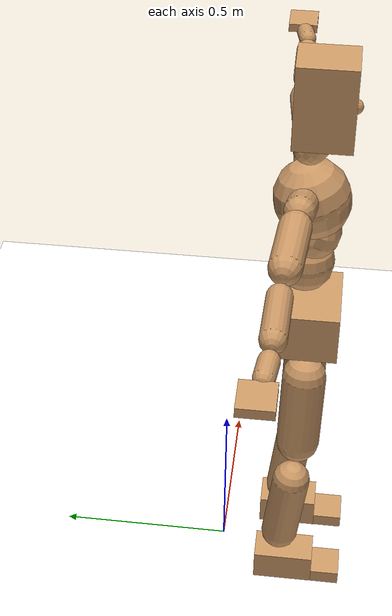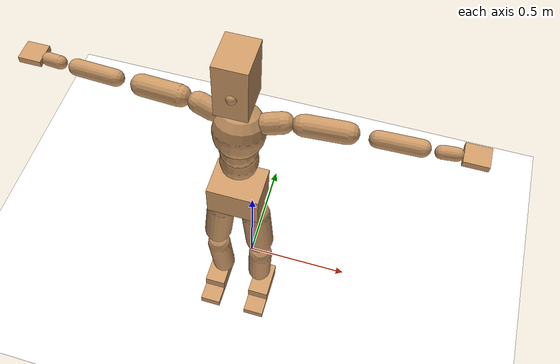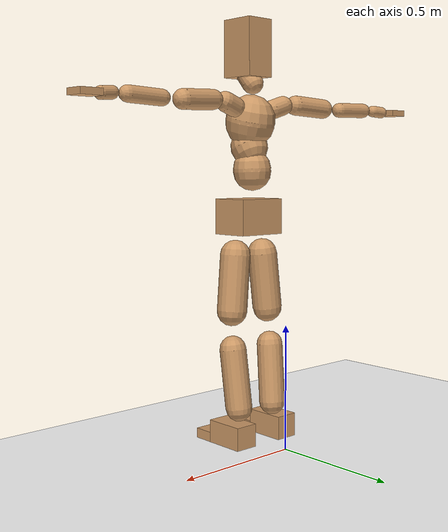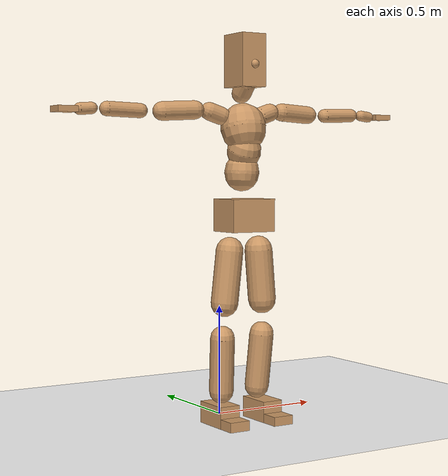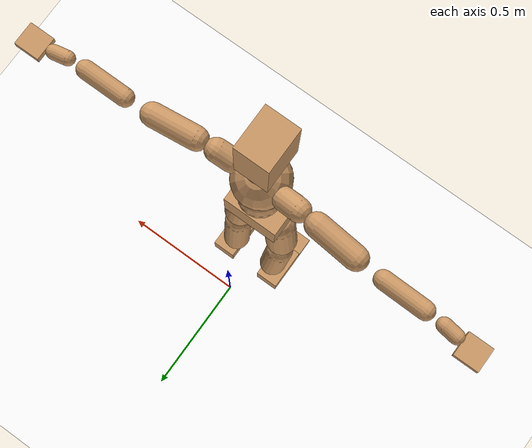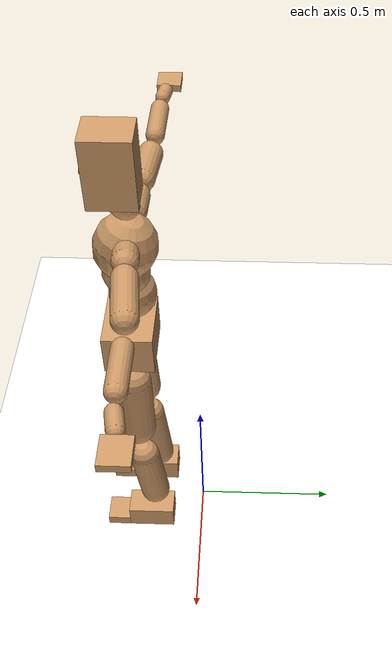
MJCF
<mujoco model="humanoid">
  <option integrator="implicitfast" />

  <visual>
    <global offwidth="1280" offheight="960" />
    <headlight active="1" ambient="0.34 0.34 0.34" diffuse="0.5 0.5 0.5" />
  </visual>

  <default>
    <joint damping="2" stiffness="2" armature="0.01" limited="true" solimplimit="0 .99 .01" />
    <geom condim="1" friction="0.7 0.005 0.0001" solimp=".99 .99 .003" solref="0.015 1" margin="0.001" rgba="0.8 0.6 .4 1" />
    <default class="smplcontact">
      <geom condim="3" friction="1. 0.005 0.0001" solref="0.015 1" solimp="0.98 0.98 0.001" priority="1" />
    </default>
    <default class="stiff_medium">
      <joint stiffness="10" />
    </default>
    <default class="stiff_medium_higher">
      <joint stiffness="50" />
    </default>
    <default class="stiff_high">
      <joint stiffness="100" />
    </default>
  </default>

  <asset>
    <texture type="skybox" builtin="gradient" rgb1="0.99 0.99 0.99" rgb2="0.608 0.828 0.892" width="100" />
    <texture builtin="flat" height="1278" mark="cross" markrgb="1 1 1" name="texgeom" random="0.01" rgb1="0.8 0.6 0.4" rgb2="0.8 0.6 0.4" type="cube" width="127" />
    <texture name="texplane" type="2d" builtin="checker" markrgb="1 1 1" rgb1="0.756 0.772 0.76" rgb2="0.6 0.6 0.6" width="100" height="100" />
    <material name="MatPlane" reflectance="0.5" texture="texplane" texrepeat="1 1" texuniform="true" />
    <material name="geom" texture="texgeom" texuniform="true" />
  </asset>

  <worldbody>
    <light name="tracking_light" pos="0 0 7" dir="0 0 -1" directional="true" cutoff="100" exponent="1" diffuse="1 1 1" specular="0.1 0.1 0.1" mode="trackcom" />
    <camera name="back" pos="0 3 2.4" xyaxes="-1 0 0 0 -1 2" mode="trackcom" />
    <camera name="side" pos="-3 0 2.4" xyaxes="0 -1 0 1 0 2" mode="trackcom" />
    <camera name="front_side" pos="-2.8 -2.8 0.8" xyaxes="0.5 -0.5 0 0.1 0.1 1" mode="trackcom" />
    <geom condim="3" name="floor" pos="0 0 0" rgba="1 1 1 1" size="100 100 .2" type="plane" material="MatPlane" />
    <body name="Pelvis" pos="-0.0018 -0.2233 0.9367" euler="90 0 0">
      <site name="Pelvis" size="0.01" />
      <freejoint name="Pelvis" />
      <geom type="box" pos="-0.0000 -0.0121 -0.0055" size="0.1069 0.0722 0.083" quat="1.0000 0.0000 0.0000 0.0000" density="3165.830099" name="Pelvis" />
      <body name="L_Hip" pos="0.0695 -0.0914 -0.0068">
        <joint name="L_Hip_x" type="hinge" pos="0 0 0" axis="1 0 0" stiffness="10.0" range="-160.0 22.92" class="stiff_medium" damping="15.0" armature="0.01"/>
        <joint name="L_Hip_y" type="hinge" pos="0 0 0" axis="0 1 0" stiffness="10.0" range="-70.0 70.0" class="stiff_medium" damping="10.000000000000007" armature="0.010000000000000014"/>
        <joint name="L_Hip_z" type="hinge" pos="0 0 0" axis="0 0 1" stiffness="10.0" range="-28.65 90.0" class="stiff_medium" damping="9.999999999999998" armature="0.009999999999999995"/>
        <geom type="capsule" density="2040.816327" fromto="0.0069 -0.075 -0.0009 0.0274 -0.3002 -0.0036" size="0.0615" name="L_Hip" />
        <body name="L_Knee" pos="0.0343 -0.3752 -0.0045">
          <joint name="L_Knee_x" type="hinge" pos="0 0 0" axis="1 0 0" range="-5.16 171.89" damping="8.000000000000005" armature="0.010000000000000014" stiffness="2.0"/>
          <joint name="L_Knee_y" type="hinge" pos="0 0 0" axis="0 1 0" range="-4.58 6.88" damping="8.000000000000004" armature="0.010000000000000009" stiffness="2.0"/>
          <joint name="L_Knee_z" type="hinge" pos="0 0 0" axis="0 0 1" range="-6.88 4.58" damping="7.999999999999997" armature="0.009999999999999993" stiffness="2.0"/>
          <geom type="capsule" density="1234.567901" fromto="-0.0027 -0.0796 -0.0087 -0.0109 -0.3184 -0.035" size="0.0541" name="L_Knee" />
          <body name="L_Ankle" pos="-0.0136 -0.398 -0.0437">
            <joint name="L_Ankle_x" type="hinge" pos="0 0 0" axis="1 0 0" range="-45.84 45.84" class="stiff_medium" damping="6.000000000000013" armature="0.010000000000000045" stiffness="10.0"/>
            <joint name="L_Ankle_y" type="hinge" pos="0 0 0" axis="0 1 0" range="-74.48 22.92" class="stiff_medium" damping="3.0" armature="0.010000000000000002" stiffness="10.0"/>
            <joint name="L_Ankle_z" type="hinge" pos="0 0 0" axis="0 0 1" range="-4.58 4.58" class="stiff_medium" damping="5.999999999999894" armature="0.009999999999999646" stiffness="10.0"/>
            <geom type="box" pos="0.0233 -0.0239 0.0242" size="0.0483 0.0464 0.085" quat="1.0000 0.0000 0.0000 0.0000" density="449.071558" name="L_Ankle" class="smplcontact" />
            <body name="L_Toe" pos="0.0264 -0.0558 0.1193">
              <joint name="L_Toe_x" type="hinge" pos="0 0 0" axis="1 0 0" range="-91.67 22.92" armature="0.00999999999999973" damping="1.999999999999973" stiffness="2.0"/>
              <joint name="L_Toe_y" type="hinge" pos="0 0 0" axis="0 1 0" range="-4.58 4.58" armature="0.01" damping="2.0" stiffness="2.0"/>
              <joint name="L_Toe_z" type="hinge" pos="0 0 0" axis="0 0 1" range="-4.58 4.58" armature="0.009999999999999176" damping="1.9999999999999176" stiffness="2.0"/>
              <geom type="box" pos="-0.003 0.0055 0.0248" size="0.0478 0.02 0.0496" quat="1.0000 0.0000 0.0000 0.0000" density="423.206892" name="L_Toe" class="smplcontact" />
            </body>
          </body>
        </body>
      </body>
      <body name="R_Hip" pos="-0.0677 -0.0905 -0.0043">
        <joint name="R_Hip_x" type="hinge" pos="0 0 0" axis="1 0 0" stiffness="10.0" range="-160.0 22.92" class="stiff_medium" damping="15.0" armature="0.01"/>
        <joint name="R_Hip_y" type="hinge" pos="0 0 0" axis="0 1 0" stiffness="10.0" range="-70.0 70.0" class="stiff_medium" damping="10.000000000000007" armature="0.010000000000000014"/>
        <joint name="R_Hip_z" type="hinge" pos="0 0 0" axis="0 0 1" stiffness="10.0" range="-90.0 28.65" class="stiff_medium" damping="9.999999999999998" armature="0.009999999999999995"/>
        <geom type="capsule" density="2040.816327" fromto="-0.0077 -0.0765 -0.0018 -0.0306 -0.3061 -0.0071" size="0.0606" name="R_Hip" />
        <body name="R_Knee" pos="-0.0383 -0.3826 -0.0089">
          <joint name="R_Knee_x" type="hinge" pos="0 0 0" axis="1 0 0" range="-5.16 171.89" damping="8.000000000000005" armature="0.010000000000000014" stiffness="2.0"/>
          <joint name="R_Knee_y" type="hinge" pos="0 0 0" axis="0 1 0" range="-6.88 4.58" damping="8.000000000000004" armature="0.010000000000000009" stiffness="2.0"/>
          <joint name="R_Knee_z" type="hinge" pos="0 0 0" axis="0 0 1" range="-4.58 6.88" damping="7.999999999999997" armature="0.009999999999999993" stiffness="2.0"/>
          <geom type="capsule" density="1234.567901" fromto="0.0032 -0.0797 -0.0085 0.0126 -0.3187 -0.0338" size="0.0541" name="R_Knee" />
          <body name="R_Ankle" pos="0.0158 -0.3984 -0.0423">
            <joint name="R_Ankle_x" type="hinge" pos="0 0 0" axis="1 0 0" range="-45.84 45.84" class="stiff_medium" damping="6.000000000000013" armature="0.010000000000000045" stiffness="10.0"/>
            <joint name="R_Ankle_y" type="hinge" pos="0 0 0" axis="0 1 0" range="-22.92 74.48" class="stiff_medium" damping="3.0" armature="0.010000000000000002" stiffness="10.0"/>
            <joint name="R_Ankle_z" type="hinge" pos="0 0 0" axis="0 0 1" range="-4.58 4.58" class="stiff_medium" damping="5.999999999999894" armature="0.009999999999999646" stiffness="10.0"/>
            <geom type="box" pos="-0.0212 -0.0174 0.0256" size="0.0483 0.0478 0.0865" quat="1.0000 0.0000 0.0000 0.0000" density="434.700981" name="R_Ankle" class="smplcontact" />
            <body name="R_Toe" pos="-0.0254 -0.0481 0.1233">
              <joint name="R_Toe_x" type="hinge" pos="0 0 0" axis="1 0 0" range="-91.67 22.92" armature="0.00999999999999973" damping="1.999999999999973" stiffness="2.0"/>
              <joint name="R_Toe_y" type="hinge" pos="0 0 0" axis="0 1 0" range="-4.58 4.58" armature="0.01" damping="2.0" stiffness="2.0"/>
              <joint name="R_Toe_z" type="hinge" pos="0 0 0" axis="0 0 1" range="-4.58 4.58" armature="0.009999999999999176" damping="1.9999999999999176" stiffness="2.0"/>
              <geom type="box" pos="0.0042 0.0045 0.0227" size="0.0479 0.0216 0.0493" quat="1.0000 0.0000 0.0000 0.0000" density="407.384095" name="R_Toe" class="smplcontact" />
            </body>
          </body>
        </body>
      </body>
      <body name="Torso" pos="-0.0025 0.109 -0.0267">
        <joint name="Torso_x" type="hinge" pos="0 0 0" axis="1 0 0" range="-25.78 57.3" class="stiff_medium" damping="12.837672596239175" armature="0.008627765864413606" stiffness="8.489687843137256"/>
        <joint name="Torso_y" type="hinge" pos="0 0 0" axis="0 1 0" range="-57.3 57.3" class="stiff_high" damping="13.920145493830063" armature="0.0056304006567302846" stiffness="86.03759411764705"/>
        <joint name="Torso_z" type="hinge" pos="0 0 0" axis="0 0 1" range="-34.38 34.38" class="stiff_high" damping="16.313482756433828" armature="0.00759355084219654" stiffness="87.61702040816327"/>
        <geom type="capsule" density="2040.816327" fromto="0.0025 0.0608 0.0005 0.003 0.0743 0.0006" size="0.0769" name="Torso" />
        <body name="Spine" pos="0.0055 0.1352 0.0011">
          <joint name="Spine_x" type="hinge" pos="0 0 0" axis="1 0 0" stiffness="8.440003921568628" range="-25.78 57.3" class="stiff_medium" damping="12.944044339710404" armature="0.008822970301140124"/>
          <joint name="Spine_y" type="hinge" pos="0 0 0" axis="0 1 0" stiffness="8.622363333333332" range="-57.3 57.3" class="stiff_high" damping="5.558891092892723" armature="0.005599768044303965"/>
          <joint name="Spine_z" type="hinge" pos="0 0 0" axis="0 0 1" stiffness="16.81056166666667" range="-34.38 34.38" class="stiff_high" damping="9.22406294447444" armature="0.007029586757117282"/>
          <geom type="capsule" density="2040.816327" fromto="0.0007 0.0238 0.0114 0.0008 0.0291 0.014" size="0.0755" name="Spine" />
          <body name="Chest" pos="0.0015 0.0529 0.0254">
            <joint name="Chest_x" type="hinge" pos="0 0 0" axis="1 0 0" stiffness="8.46999632653061" range="-25.78 57.3" class="stiff_medium" damping="13.04188811790167" armature="0.00892514335295326"/>
            <joint name="Chest_y" type="hinge" pos="0 0 0" axis="0 1 0" stiffness="7.662303513513513" range="-57.3 57.3" class="stiff_high" damping="5.229467469280725" armature="0.0055766784843231665"/>
            <joint name="Chest_z" type="hinge" pos="0 0 0" axis="0 0 1" stiffness="17.370472765957448" range="-34.38 34.38" class="stiff_high" damping="9.195844926855209" armature="0.006761439133758051"/>
            <geom type="capsule" density="2040.816327" fromto="-0.0009 0.0682 -0.0173 -0.001 0.0833 -0.0212" size="0.1002" name="Chest" />
            <body name="Neck" pos="-0.0028 0.2139 -0.0429">
              <joint name="Neck_x" type="hinge" pos="0 0 0" axis="1 0 0" range="-28.65 57.3" class="stiff_medium_higher" damping="10.000000000000007" armature="0.010000000000000016" stiffness="50.0"/>
              <joint name="Neck_y" type="hinge" pos="0 0 0" axis="0 1 0" range="-40.11 40.11" class="stiff_medium_higher" damping="10.0" armature="0.01" stiffness="50.0"/>
              <joint name="Neck_z" type="hinge" pos="0 0 0" axis="0 0 1" range="-40.11 40.11" class="stiff_medium_higher" damping="10.0" armature="0.010000000000000002" stiffness="50.0"/>
              <geom type="capsule" density="1000" fromto="0.001 0.013 0.0103 0.0041 0.052 0.0411" size="0.0436" name="Neck" />
              <body name="Head" pos="0.0052 0.065 0.0513">
                <joint name="Head_x" type="hinge" pos="0 0 0" axis="1 0 0" range="-28.65 57.3" class="stiff_medium_higher" damping="1.9999999999999967" armature="0.009999999999999967" stiffness="50.0"/>
                <joint name="Head_y" type="hinge" pos="0 0 0" axis="0 1 0" range="-40.11 40.11" class="stiff_medium_higher" damping="2.0" armature="0.01" stiffness="50.0"/>
                <joint name="Head_z" type="hinge" pos="0 0 0" axis="0 0 1" range="-40.11 40.11" class="stiff_medium_higher" damping="1.9999999999999947" armature="0.009999999999999946" stiffness="50.0"/>
                <geom type="box" pos="-0.0042 0.0876 -0.0116" size="0.0606 0.1154 0.076" quat="1.0000 0.0000 0.0000 0.0000" density="1018.069894" name="Head" />
                <geom type="capsule" name="nose" size="0.02 0.01" pos="0 0.07 0.05" quat="1 0 0 0" mass="0" contype="0" conaffinity="0" />
              </body>
            </body>
            <body name="L_Thorax" pos="0.0788 0.1217 -0.0341">
              <joint name="L_Thorax_x" type="hinge" pos="0 0 0" axis="1 0 0" range="-10.89 4.58" class="stiff_medium_higher" damping="9.898453848284408" armature="0.0044690876275493415" stiffness="27.40475147058824"/>
              <joint name="L_Thorax_y" type="hinge" pos="0 0 0" axis="0 1 0" range="-28.65 17.19" class="stiff_medium_higher" damping="10.906436762891813" armature="0.005394379524433924" stiffness="27.563495098039215"/>
              <joint name="L_Thorax_z" type="hinge" pos="0 0 0" axis="0 0 1" range="-31.51 40.11" class="stiff_medium_higher" damping="10.907008396061892" armature="0.005395227001882433" stiffness="27.562054411764702"/>
              <geom type="capsule" density="1000" fromto="0.0182 0.0061 -0.0018 0.0728 0.0244 -0.0071" size="0.0403775" name="L_Thorax" />
              <body name="L_Shoulder" pos="0.091 0.0305 -0.0089">
                <joint name="L_Shoulder_x" type="hinge" pos="0 0 0" axis="1 0 0" range="-97.4 97.4" class="stiff_medium" damping="2.8335812834294707" armature="0.004087809572777424" stiffness="5.456048137254902"/>
                <joint name="L_Shoulder_y" type="hinge" pos="0 0 0" axis="0 1 0" range="-108.86 80.21" class="stiff_medium" damping="3.2560358396207056" armature="0.005353512398076549" stiffness="5.500941666666668"/>
                <joint name="L_Shoulder_z" type="hinge" pos="0 0 0" axis="0 0 1" range="-97.4 85.94" class="stiff_medium" damping="3.255329917746848" armature="0.005354534137045781" stiffness="5.497507450980392"/>
                <geom type="capsule" density="1000" fromto="0.0519 -0.0026 -0.0055 0.2077 -0.0102 -0.022" size="0.0400675" name="L_Shoulder" />
                <body name="L_Elbow" pos="0.2596 -0.0128 -0.0275">
                  <joint name="L_Elbow_x" type="hinge" pos="0 0 0" axis="1 0 0" range="-17.19 4.58" damping="2.1692232321573766" armature="0.003512713386026221" stiffness="1.0716569019607842"/>
                  <joint name="L_Elbow_y" type="hinge" pos="0 0 0" axis="0 1 0" range="-180.0 17.19" damping="2.6281197645592975" armature="0.0051559193496456945" stiffness="1.0717023333333335"/>
                  <joint name="L_Elbow_z" type="hinge" pos="0 0 0" axis="0 0 1" range="-100.84 4.58" damping="2.628479458959908" armature="0.005161267946560704" stiffness="1.0708848039215686"/>
                  <geom type="capsule" density="1000" fromto="0.0498 0.0018 -0.0002 0.1994 0.0072 -0.0009" size="0.0313875" name="L_Elbow" />
                  <body name="L_Wrist" pos="0.2492 0.009 -0.0012">
                    <joint name="L_Wrist_x" type="hinge" pos="0 0 0" axis="1 0 0" range="-180.0 22.92" armature="0.003413260414707593" damping="0.8179602317085058" stiffness="0.9800877450980392"/>
                    <joint name="L_Wrist_y" type="hinge" pos="0 0 0" axis="0 1 0" range="-17.19 17.19" armature="0.004554216652521888" damping="0.9480666530130746" stiffness="0.9868111764705882"/>
                    <joint name="L_Wrist_z" type="hinge" pos="0 0 0" axis="0 0 1" range="-22.92 22.92" armature="0.004616250356941995" damping="0.9533907320657456" stiffness="0.9845153725490194"/>
                    <geom type="capsule" density="1000" fromto="0.0168 -0.0016 -0.003 0.0672 -0.0065 -0.012" size="0.024645" name="L_Wrist" class="smplcontact" />
                    <body name="L_Hand" pos="0.084 -0.0082 -0.0149">
                      <joint name="L_Hand_x" type="hinge" pos="0 0 0" axis="1 0 0" range="-17.19 17.19" armature="0.0028768062493040357" damping="0.731876295599479" stiffness="0.930968"/>
                      <joint name="L_Hand_y" type="hinge" pos="0 0 0" axis="0 1 0" range="-51.57 51.57" armature="0.003775286570750197" damping="0.8384117112968031" stiffness="0.930968"/>
                      <joint name="L_Hand_z" type="hinge" pos="0 0 0" axis="0 0 1" range="-91.67 91.67" armature="0.004014788776441228" damping="0.864597001802104" stiffness="0.930968"/>
                      <geom type="box" pos="0.0493 0.001 -0.0058" size="0.0453375 0.012245 0.041695" quat="1.0000 0.0000 0.0000 0.0000" density="400.552564" name="L_Hand" class="smplcontact" />
                    </body>
                  </body>
                </body>
              </body>
            </body>
            <body name="R_Thorax" pos="-0.0818 0.1188 -0.0386">
              <joint name="R_Thorax_x" type="hinge" pos="0 0 0" axis="1 0 0" range="-10.89 4.58" class="stiff_medium_higher" damping="9.898453848284408" armature="0.0044690876275493415" stiffness="27.40475147058824"/>
              <joint name="R_Thorax_y" type="hinge" pos="0 0 0" axis="0 1 0" range="-17.19 28.65" class="stiff_medium_higher" damping="10.906436762891813" armature="0.005394379524433924" stiffness="27.563495098039215"/>
              <joint name="R_Thorax_z" type="hinge" pos="0 0 0" axis="0 0 1" range="-40.11 31.51" class="stiff_medium_higher" damping="10.907008396061892" armature="0.005395227001882433" stiffness="27.562054411764702"/>
              <geom type="capsule" density="1000" fromto="-0.0192 0.0065 -0.0018 -0.0768 0.026 -0.0073" size="0.0396025" name="R_Thorax" />
              <body name="R_Shoulder" pos="-0.096 0.0326 -0.0091">
                <joint name="R_Shoulder_x" type="hinge" pos="0 0 0" axis="1 0 0" range="-97.4 97.4" class="stiff_medium" damping="2.8335812834294707" armature="0.004087809572777424" stiffness="5.456048137254902"/>
                <joint name="R_Shoulder_y" type="hinge" pos="0 0 0" axis="0 1 0" range="-80.21 108.86" class="stiff_medium" damping="3.2560358396207056" armature="0.005353512398076549" stiffness="5.500941666666668"/>
                <joint name="R_Shoulder_z" type="hinge" pos="0 0 0" axis="0 0 1" range="-85.94 97.4" class="stiff_medium" damping="3.255329917746848" armature="0.005354534137045781" stiffness="5.497507450980392"/>
                <geom type="capsule" density="1000" fromto="-0.0507 -0.0027 -0.0043 -0.203 -0.0107 -0.0171" size="0.0411525" name="R_Shoulder" />
                <body name="R_Elbow" pos="-0.2537 -0.0133 -0.0214">
                  <joint name="R_Elbow_x" type="hinge" pos="0 0 0" axis="1 0 0" range="-17.19 4.58" damping="2.1692232321573766" armature="0.003512713386026221" stiffness="1.0716569019607842"/>
                  <joint name="R_Elbow_y" type="hinge" pos="0 0 0" axis="0 1 0" range="-17.19 180.0" damping="2.6281197645592975" armature="0.0051559193496456945" stiffness="1.0717023333333335"/>
                  <joint name="R_Elbow_z" type="hinge" pos="0 0 0" axis="0 0 1" range="-4.58 100.84" damping="2.628479458959908" armature="0.005161267946560704" stiffness="1.0708848039215686"/>
                  <geom type="capsule" density="1000" fromto="-0.0511 0.0016 -0.0011 -0.2042 0.0062 -0.0044" size="0.03162" name="R_Elbow" />
                  <body name="R_Wrist" pos="-0.2553 0.0078 -0.0056">
                    <joint name="R_Wrist_x" type="hinge" pos="0 0 0" axis="1 0 0" range="-180.0 22.92" armature="0.003413260414707593" damping="0.8179602317085058" stiffness="0.9800877450980392"/>
                    <joint name="R_Wrist_y" type="hinge" pos="0 0 0" axis="0 1 0" range="-17.19 17.19" armature="0.004554216652521888" damping="0.9480666530130746" stiffness="0.9868111764705882"/>
                    <joint name="R_Wrist_z" type="hinge" pos="0 0 0" axis="0 0 1" range="-22.92 22.92" armature="0.004616250356941995" damping="0.9533907320657456" stiffness="0.9845153725490194"/>
                    <geom type="capsule" density="1000" fromto="-0.0169 -0.0012 -0.0021 -0.0677 -0.0049 -0.0083" size="0.025265" name="R_Wrist" class="smplcontact" />
                    <body name="R_Hand" pos="-0.0846 -0.0061 -0.0103">
                      <joint name="R_Hand_x" type="hinge" pos="0 0 0" axis="1 0 0" range="-17.19 17.19" armature="0.0028768062493040357" damping="0.731876295599479" stiffness="0.930968"/>
                      <joint name="R_Hand_y" type="hinge" pos="0 0 0" axis="0 1 0" range="-51.57 51.57" armature="0.003775286570750197" damping="0.8384117112968031" stiffness="0.930968"/>
                      <joint name="R_Hand_z" type="hinge" pos="0 0 0" axis="0 0 1" range="-91.67 91.67" armature="0.004014788776441228" damping="0.864597001802104" stiffness="0.930968"/>
                      <geom type="box" pos="-0.0462 -0.0009 -0.0079" size="0.0440975 0.01271 0.042315" quat="1.0000 0.0000 0.0000 0.0000" density="403.679611" name="R_Hand" class="smplcontact" />
                    </body>
                  </body>
                </body>
              </body>
            </body>
          </body>
        </body>
      </body>
    </body>
  </worldbody>
  <actuator>
    <general name="L_Hip_x" joint="L_Hip_x" biastype="affine" gainprm="287.33006409732246" biasprm="-215.3247604770444 -180.0 -2.0" ctrllimited="true" ctrlrange="-1 1" forcerange="-360.0 360.0" />
    <general name="L_Hip_y" joint="L_Hip_y" biastype="affine" gainprm="219.9114857512855" biasprm="0.0 -180.0 -2.0000000000000013" ctrllimited="true" ctrlrange="-1 1" forcerange="-360.0 360.0" />
    <general name="L_Hip_z" joint="L_Hip_z" biastype="affine" gainprm="186.3749841742145" biasprm="96.3683546488669 -180.0 -1.9999999999999996" ctrllimited="true" ctrlrange="-1 1" forcerange="-360.0 360.0" />
    <general name="L_Knee_x" joint="L_Knee_x" biastype="affine" gainprm="278.10948965903646" biasprm="261.8988715665131 -180.0 -2.0000000000000013" ctrllimited="true" ctrlrange="-1 1" forcerange="-360.0 360.0" />
    <general name="L_Knee_y" joint="L_Knee_y" biastype="affine" gainprm="18.001325905069514" biasprm="3.612831551628262 -180.0 -2.000000000000001" ctrllimited="true" ctrlrange="-1 1" forcerange="-360.0 360.0" />
    <general name="L_Knee_z" joint="L_Knee_z" biastype="affine" gainprm="18.001325905069514" biasprm="-3.612831551628262 -180.0 -1.9999999999999993" ctrllimited="true" ctrlrange="-1 1" forcerange="-360.0 360.0" />
    <general name="L_Ankle_x" joint="L_Ankle_x" biastype="affine" gainprm="72.00530362027807" biasprm="0.0 -90.0 -2.0000000000000044" ctrllimited="true" ctrlrange="-1 1" forcerange="-180.0 180.0" />
    <general name="L_Ankle_y" joint="L_Ankle_y" biastype="affine" gainprm="76.49778111491148" biasprm="-40.49512930477244 -90.0 -2.0" ctrllimited="true" ctrlrange="-1 1" forcerange="-180.0 180.0" />
    <general name="L_Ankle_z" joint="L_Ankle_z" biastype="affine" gainprm="7.1942471767206255" biasprm="0.0 -90.0 -1.9999999999999647" ctrllimited="true" ctrlrange="-1 1" forcerange="-180.0 180.0" />
    <general name="L_Toe_x" joint="L_Toe_x" biastype="affine" gainprm="71.99902043497087" biasprm="-43.19689898685965 -72.0 -0.7999999999999892" ctrllimited="true" ctrlrange="-1 1" forcerange="-144.0 144.0" />
    <general name="L_Toe_y" joint="L_Toe_y" biastype="affine" gainprm="5.755397741376501" biasprm="0.0 -72.0 -0.8" ctrllimited="true" ctrlrange="-1 1" forcerange="-144.0 144.0" />
    <general name="L_Toe_z" joint="L_Toe_z" biastype="affine" gainprm="5.755397741376501" biasprm="0.0 -72.0 -0.7999999999999671" ctrllimited="true" ctrlrange="-1 1" forcerange="-144.0 144.0" />
    <general name="R_Hip_x" joint="R_Hip_x" biastype="affine" gainprm="287.33006409732246" biasprm="-215.3247604770444 -180.0 -2.0" ctrllimited="true" ctrlrange="-1 1" forcerange="-360.0 360.0" />
    <general name="R_Hip_y" joint="R_Hip_y" biastype="affine" gainprm="219.9114857512855" biasprm="0.0 -180.0 -2.0000000000000013" ctrllimited="true" ctrlrange="-1 1" forcerange="-360.0 360.0" />
    <general name="R_Hip_z" joint="R_Hip_z" biastype="affine" gainprm="186.3749841742145" biasprm="-96.3683546488669 -180.0 -1.9999999999999996" ctrllimited="true" ctrlrange="-1 1" forcerange="-360.0 360.0" />
    <general name="R_Knee_x" joint="R_Knee_x" biastype="affine" gainprm="278.10948965903646" biasprm="261.8988715665131 -180.0 -2.0000000000000013" ctrllimited="true" ctrlrange="-1 1" forcerange="-360.0 360.0" />
    <general name="R_Knee_y" joint="R_Knee_y" biastype="affine" gainprm="18.001325905069514" biasprm="-3.612831551628262 -180.0 -2.000000000000001" ctrllimited="true" ctrlrange="-1 1" forcerange="-360.0 360.0" />
    <general name="R_Knee_z" joint="R_Knee_z" biastype="affine" gainprm="18.001325905069514" biasprm="3.612831551628262 -180.0 -1.9999999999999993" ctrllimited="true" ctrlrange="-1 1" forcerange="-360.0 360.0" />
    <general name="R_Ankle_x" joint="R_Ankle_x" biastype="affine" gainprm="72.00530362027807" biasprm="0.0 -90.0 -2.0000000000000044" ctrllimited="true" ctrlrange="-1 1" forcerange="-180.0 180.0" />
    <general name="R_Ankle_y" joint="R_Ankle_y" biastype="affine" gainprm="76.49778111491148" biasprm="40.49512930477244 -90.0 -2.0" ctrllimited="true" ctrlrange="-1 1" forcerange="-180.0 180.0" />
    <general name="R_Ankle_z" joint="R_Ankle_z" biastype="affine" gainprm="7.1942471767206255" biasprm="0.0 -90.0 -1.9999999999999647" ctrllimited="true" ctrlrange="-1 1" forcerange="-180.0 180.0" />
    <general name="R_Toe_x" joint="R_Toe_x" biastype="affine" gainprm="71.99902043497087" biasprm="-43.19689898685965 -72.0 -0.7999999999999892" ctrllimited="true" ctrlrange="-1 1" forcerange="-144.0 144.0" />
    <general name="R_Toe_y" joint="R_Toe_y" biastype="affine" gainprm="5.755397741376501" biasprm="0.0 -72.0 -0.8" ctrllimited="true" ctrlrange="-1 1" forcerange="-144.0 144.0" />
    <general name="R_Toe_z" joint="R_Toe_z" biastype="affine" gainprm="5.755397741376501" biasprm="0.0 -72.0 -0.7999999999999671" ctrllimited="true" ctrlrange="-1 1" forcerange="-144.0 144.0" />
    <general name="Torso_x" joint="Torso_x" biastype="affine" gainprm="147.72255939308" biasprm="56.04495753574723 -203.75250823529413 -3.423379358997113" ctrllimited="true" ctrlrange="-1 1" forcerange="-305.6287623529412 305.6287623529412" />
    <general name="Torso_y" joint="Torso_y" biastype="affine" gainprm="206.5054362399808" biasprm="0.0 -206.4902258823529 -2.7840290987660126" ctrllimited="true" ctrlrange="-1 1" forcerange="-309.73533882352933 309.73533882352933" />
    <general name="Torso_z" joint="Torso_z" biastype="affine" gainprm="126.17780313587792" biasprm="0.0 -210.28084897959184 -3.2626965512867656" ctrllimited="true" ctrlrange="-1 1" forcerange="-315.42127346938776 315.42127346938776" />
    <general name="Spine_x" joint="Spine_x" biastype="affine" gainprm="146.8580475063755" biasprm="55.716967469920014 -202.56009411764708 -3.4517451572561075" ctrllimited="true" ctrlrange="-1 1" forcerange="-303.84014117647064 303.84014117647064" />
    <general name="Spine_y" joint="Spine_y" biastype="affine" gainprm="206.95196324700646" biasprm="0.0 -206.93671999999998 -2.7794455464463614" ctrllimited="true" ctrlrange="-1 1" forcerange="-310.40508 310.40508" />
    <general name="Spine_z" joint="Spine_z" biastype="affine" gainprm="121.04495968357412" biasprm="0.0 -201.72674 -3.0746876481581467" ctrllimited="true" ctrlrange="-1 1" forcerange="-302.59011000000004 302.59011000000004" />
    <general name="Chest_x" joint="Chest_x" biastype="affine" gainprm="147.37992238625336" biasprm="55.914963331905454 -203.27991183673467 -3.4778368314404453" ctrllimited="true" ctrlrange="-1 1" forcerange="-304.919867755102 304.919867755102" />
    <general name="Chest_y" joint="Chest_y" biastype="affine" gainprm="183.90883030708795" biasprm="0.0 -183.8952843243243 -2.6147337346403625" ctrllimited="true" ctrlrange="-1 1" forcerange="-275.8429264864865 275.8429264864865" />
    <general name="Chest_z" joint="Chest_z" biastype="affine" gainprm="125.07661655405374" biasprm="0.0 -208.44567319148936 -3.0652816422850693" ctrllimited="true" ctrlrange="-1 1" forcerange="-312.66850978723403 312.66850978723403" />
    <general name="Neck_x" joint="Neck_x" biastype="affine" gainprm="27.00198885760427" biasprm="9.000662952534757 -36.0 -0.8000000000000006" ctrllimited="true" ctrlrange="-1 1" forcerange="-72.0 72.0" />
    <general name="Neck_y" joint="Neck_y" biastype="affine" gainprm="25.20185626709732" biasprm="0.0 -36.0 -0.8" ctrllimited="true" ctrlrange="-1 1" forcerange="-72.0 72.0" />
    <general name="Neck_z" joint="Neck_z" biastype="affine" gainprm="25.20185626709732" biasprm="0.0 -36.0 -0.8" ctrllimited="true" ctrlrange="-1 1" forcerange="-72.0 72.0" />
    <general name="Head_x" joint="Head_x" biastype="affine" gainprm="18.001325905069514" biasprm="6.000441968356505 -24.0 -0.7999999999999987" ctrllimited="true" ctrlrange="-1 1" forcerange="-48.0 48.0" />
    <general name="Head_y" joint="Head_y" biastype="affine" gainprm="16.801237511398213" biasprm="0.0 -24.0 -0.8" ctrllimited="true" ctrlrange="-1 1" forcerange="-48.0 48.0" />
    <general name="Head_z" joint="Head_z" biastype="affine" gainprm="16.801237511398213" biasprm="0.0 -24.0 -0.7999999999999979" ctrllimited="true" ctrlrange="-1 1" forcerange="-48.0 48.0" />
    <general name="L_Thorax_x" joint="L_Thorax_x" biastype="affine" gainprm="8.87921956247823" biasprm="-3.6217114052513035 -65.77140352941177 -0.7918763078627528" ctrllimited="true" ctrlrange="-1 1" forcerange="-131.54280705882354 131.54280705882354" />
    <general name="L_Thorax_y" joint="L_Thorax_y" biastype="affine" gainprm="26.462904444938125" biasprm="-6.615726111234531 -66.15238823529411 -0.8725149410313451" ctrllimited="true" ctrlrange="-1 1" forcerange="-132.30477647058822 132.30477647058822" />
    <general name="L_Thorax_z" joint="L_Thorax_z" biastype="affine" gainprm="41.34324071503103" biasprm="4.964421532382949 -66.14893058823529 -0.8725606716849514" ctrllimited="true" ctrlrange="-1 1" forcerange="-132.29786117647058 132.29786117647058" />
    <general name="L_Shoulder_x" joint="L_Shoulder_x" biastype="affine" gainprm="44.52006145665557" biasprm="0.0 -26.18903105882353 -0.7556216755811923" ctrllimited="true" ctrlrange="-1 1" forcerange="-52.37806211764706 52.37806211764706" />
    <general name="L_Shoulder_y" joint="L_Shoulder_y" biastype="affine" gainprm="43.566058781520816" biasprm="-6.60161624842953 -26.404520000000005 -0.8682762238988548" ctrllimited="true" ctrlrange="-1 1" forcerange="-52.80904000000001 52.80904000000001" />
    <general name="L_Shoulder_z" joint="L_Shoulder_z" biastype="affine" gainprm="42.219361689603346" biasprm="-2.6389979544172326 -26.388035764705883 -0.8680879780658262" ctrllimited="true" ctrlrange="-1 1" forcerange="-52.776071529411766 52.776071529411766" />
    <general name="L_Elbow_x" joint="L_Elbow_x" biastype="affine" gainprm="7.329326473452871" biasprm="-4.245420616915054 -38.57964847058823 -0.34707571714518026" ctrllimited="true" ctrlrange="-1 1" forcerange="-77.15929694117646 77.15929694117646" />
    <general name="L_Elbow_y" joint="L_Elbow_y" biastype="affine" gainprm="66.39095808289775" biasprm="-54.81572029756369 -38.58128400000001 -0.4204991623294876" ctrllimited="true" ctrlrange="-1 1" forcerange="-77.16256800000002 77.16256800000002" />
    <general name="L_Elbow_z" joint="L_Elbow_z" biastype="affine" gainprm="35.46628016580925" biasprm="-32.38459617492695 -38.55185294117647 -0.4205567134335853" ctrllimited="true" ctrlrange="-1 1" forcerange="-77.10370588235294 77.10370588235294" />
    <general name="L_Wrist_x" joint="L_Wrist_x" biastype="affine" gainprm="10.41330130729179" biasprm="-8.060917451948525 -5.880526470588235 -0.32718409268340237" ctrllimited="true" ctrlrange="-1 1" forcerange="-11.76105294117647 11.76105294117647" />
    <general name="L_Wrist_y" joint="L_Wrist_y" biastype="affine" gainprm="1.7763909594412128" biasprm="0.0 -5.9208670588235295 -0.37922666120522985" ctrllimited="true" ctrlrange="-1 1" forcerange="-11.841734117647059 11.841734117647059" />
    <general name="L_Wrist_z" joint="L_Wrist_z" biastype="affine" gainprm="2.363010943974111" biasprm="0.0 -5.907092235294117 -0.3813562928262983" ctrllimited="true" ctrlrange="-1 1" forcerange="-11.814184470588234 11.814184470588234" />
    <general name="L_Hand_x" joint="L_Hand_x" biastype="affine" gainprm="1.675865837519076" biasprm="0.0 -5.585808 -0.2927505182397916" ctrllimited="true" ctrlrange="-1 1" forcerange="-11.171616 11.171616" />
    <general name="L_Hand_y" joint="L_Hand_y" biastype="affine" gainprm="5.027597512557227" biasprm="0.0 -5.585808 -0.33536468451872126" ctrllimited="true" ctrlrange="-1 1" forcerange="-11.171616 11.171616" />
    <general name="L_Hand_z" joint="L_Hand_z" biastype="affine" gainprm="8.936976226025227" biasprm="0.0 -5.585808 -0.3458388007208416" ctrllimited="true" ctrlrange="-1 1" forcerange="-11.171616 11.171616" />
    <general name="R_Thorax_x" joint="R_Thorax_x" biastype="affine" gainprm="8.87921956247823" biasprm="-3.6217114052513035 -65.77140352941177 -0.7918763078627528" ctrllimited="true" ctrlrange="-1 1" forcerange="-131.54280705882354 131.54280705882354" />
    <general name="R_Thorax_y" joint="R_Thorax_y" biastype="affine" gainprm="26.462904444938125" biasprm="6.615726111234528 -66.15238823529411 -0.8725149410313451" ctrllimited="true" ctrlrange="-1 1" forcerange="-132.30477647058822 132.30477647058822" />
    <general name="R_Thorax_z" joint="R_Thorax_z" biastype="affine" gainprm="41.34324071503103" biasprm="-4.964421532382949 -66.14893058823529 -0.8725606716849514" ctrllimited="true" ctrlrange="-1 1" forcerange="-132.29786117647058 132.29786117647058" />
    <general name="R_Shoulder_x" joint="R_Shoulder_x" biastype="affine" gainprm="44.52006145665557" biasprm="0.0 -26.18903105882353 -0.7556216755811923" ctrllimited="true" ctrlrange="-1 1" forcerange="-52.37806211764706 52.37806211764706" />
    <general name="R_Shoulder_y" joint="R_Shoulder_y" biastype="affine" gainprm="43.566058781520816" biasprm="6.60161624842953 -26.404520000000005 -0.8682762238988548" ctrllimited="true" ctrlrange="-1 1" forcerange="-52.80904000000001 52.80904000000001" />
    <general name="R_Shoulder_z" joint="R_Shoulder_z" biastype="affine" gainprm="42.219361689603346" biasprm="2.638997954417227 -26.388035764705883 -0.8680879780658262" ctrllimited="true" ctrlrange="-1 1" forcerange="-52.776071529411766 52.776071529411766" />
    <general name="R_Elbow_x" joint="R_Elbow_x" biastype="affine" gainprm="7.329326473452871" biasprm="-4.245420616915054 -38.57964847058823 -0.34707571714518026" ctrllimited="true" ctrlrange="-1 1" forcerange="-77.15929694117646 77.15929694117646" />
    <general name="R_Elbow_y" joint="R_Elbow_y" biastype="affine" gainprm="66.39095808289775" biasprm="54.81572029756369 -38.58128400000001 -0.4204991623294876" ctrllimited="true" ctrlrange="-1 1" forcerange="-77.16256800000002 77.16256800000002" />
    <general name="R_Elbow_z" joint="R_Elbow_z" biastype="affine" gainprm="35.46628016580925" biasprm="32.38459617492695 -38.55185294117647 -0.4205567134335853" ctrllimited="true" ctrlrange="-1 1" forcerange="-77.10370588235294 77.10370588235294" />
    <general name="R_Wrist_x" joint="R_Wrist_x" biastype="affine" gainprm="10.41330130729179" biasprm="-8.060917451948525 -5.880526470588235 -0.32718409268340237" ctrllimited="true" ctrlrange="-1 1" forcerange="-11.76105294117647 11.76105294117647" />
    <general name="R_Wrist_y" joint="R_Wrist_y" biastype="affine" gainprm="1.7763909594412128" biasprm="0.0 -5.9208670588235295 -0.37922666120522985" ctrllimited="true" ctrlrange="-1 1" forcerange="-11.841734117647059 11.841734117647059" />
    <general name="R_Wrist_z" joint="R_Wrist_z" biastype="affine" gainprm="2.363010943974111" biasprm="0.0 -5.907092235294117 -0.3813562928262983" ctrllimited="true" ctrlrange="-1 1" forcerange="-11.814184470588234 11.814184470588234" />
    <general name="R_Hand_x" joint="R_Hand_x" biastype="affine" gainprm="1.675865837519076" biasprm="0.0 -5.585808 -0.2927505182397916" ctrllimited="true" ctrlrange="-1 1" forcerange="-11.171616 11.171616" />
    <general name="R_Hand_y" joint="R_Hand_y" biastype="affine" gainprm="5.027597512557227" biasprm="0.0 -5.585808 -0.33536468451872126" ctrllimited="true" ctrlrange="-1 1" forcerange="-11.171616 11.171616" />
    <general name="R_Hand_z" joint="R_Hand_z" biastype="affine" gainprm="8.936976226025227" biasprm="0.0 -5.585808 -0.3458388007208416" ctrllimited="true" ctrlrange="-1 1" forcerange="-11.171616 11.171616" />
  </actuator>
  <contact>
    <exclude body1="Torso" body2="Chest" />
    <exclude body1="Head" body2="Chest" />
    <exclude body1="R_Knee" body2="R_Toe" />
    <exclude body1="R_Knee" body2="L_Ankle" />
    <exclude body1="R_Knee" body2="L_Toe" />
    <exclude body1="L_Knee" body2="L_Toe" />
    <exclude body1="L_Knee" body2="R_Ankle" />
    <exclude body1="L_Knee" body2="R_Toe" />
    <exclude body1="L_Shoulder" body2="Chest" />
    <exclude body1="R_Shoulder" body2="Chest" />
  </contact>
  <sensor>
    <framelinvel name="sensor_Pelvis_framelinvel" objtype="xbody" objname="Pelvis" />
    <framelinvel name="sensor_L_Hip_framelinvel" objtype="xbody" objname="L_Hip" />
    <framelinvel name="sensor_L_Knee_framelinvel" objtype="xbody" objname="L_Knee" />
    <framelinvel name="sensor_L_Ankle_framelinvel" objtype="xbody" objname="L_Ankle" />
    <framelinvel name="sensor_L_Toe_framelinvel" objtype="xbody" objname="L_Toe" />
    <framelinvel name="sensor_R_Hip_framelinvel" objtype="xbody" objname="R_Hip" />
    <framelinvel name="sensor_R_Knee_framelinvel" objtype="xbody" objname="R_Knee" />
    <framelinvel name="sensor_R_Ankle_framelinvel" objtype="xbody" objname="R_Ankle" />
    <framelinvel name="sensor_R_Toe_framelinvel" objtype="xbody" objname="R_Toe" />
    <framelinvel name="sensor_Torso_framelinvel" objtype="xbody" objname="Torso" />
    <framelinvel name="sensor_Spine_framelinvel" objtype="xbody" objname="Spine" />
    <framelinvel name="sensor_Chest_framelinvel" objtype="xbody" objname="Chest" />
    <framelinvel name="sensor_Neck_framelinvel" objtype="xbody" objname="Neck" />
    <framelinvel name="sensor_Head_framelinvel" objtype="xbody" objname="Head" />
    <framelinvel name="sensor_L_Thorax_framelinvel" objtype="xbody" objname="L_Thorax" />
    <framelinvel name="sensor_L_Shoulder_framelinvel" objtype="xbody" objname="L_Shoulder" />
    <framelinvel name="sensor_L_Elbow_framelinvel" objtype="xbody" objname="L_Elbow" />
    <framelinvel name="sensor_L_Wrist_framelinvel" objtype="xbody" objname="L_Wrist" />
    <framelinvel name="sensor_L_Hand_framelinvel" objtype="xbody" objname="L_Hand" />
    <framelinvel name="sensor_R_Thorax_framelinvel" objtype="xbody" objname="R_Thorax" />
    <framelinvel name="sensor_R_Shoulder_framelinvel" objtype="xbody" objname="R_Shoulder" />
    <framelinvel name="sensor_R_Elbow_framelinvel" objtype="xbody" objname="R_Elbow" />
    <framelinvel name="sensor_R_Wrist_framelinvel" objtype="xbody" objname="R_Wrist" />
    <framelinvel name="sensor_R_Hand_framelinvel" objtype="xbody" objname="R_Hand" />
    <frameangvel name="sensor_Pelvis_frameangvel" objtype="xbody" objname="Pelvis" />
    <frameangvel name="sensor_L_Hip_frameangvel" objtype="xbody" objname="L_Hip" />
    <frameangvel name="sensor_L_Knee_frameangvel" objtype="xbody" objname="L_Knee" />
    <frameangvel name="sensor_L_Ankle_frameangvel" objtype="xbody" objname="L_Ankle" />
    <frameangvel name="sensor_L_Toe_frameangvel" objtype="xbody" objname="L_Toe" />
    <frameangvel name="sensor_R_Hip_frameangvel" objtype="xbody" objname="R_Hip" />
    <frameangvel name="sensor_R_Knee_frameangvel" objtype="xbody" objname="R_Knee" />
    <frameangvel name="sensor_R_Ankle_frameangvel" objtype="xbody" objname="R_Ankle" />
    <frameangvel name="sensor_R_Toe_frameangvel" objtype="xbody" objname="R_Toe" />
    <frameangvel name="sensor_Torso_frameangvel" objtype="xbody" objname="Torso" />
    <frameangvel name="sensor_Spine_frameangvel" objtype="xbody" objname="Spine" />
    <frameangvel name="sensor_Chest_frameangvel" objtype="xbody" objname="Chest" />
    <frameangvel name="sensor_Neck_frameangvel" objtype="xbody" objname="Neck" />
    <frameangvel name="sensor_Head_frameangvel" objtype="xbody" objname="Head" />
    <frameangvel name="sensor_L_Thorax_frameangvel" objtype="xbody" objname="L_Thorax" />
    <frameangvel name="sensor_L_Shoulder_frameangvel" objtype="xbody" objname="L_Shoulder" />
    <frameangvel name="sensor_L_Elbow_frameangvel" objtype="xbody" objname="L_Elbow" />
    <frameangvel name="sensor_L_Wrist_frameangvel" objtype="xbody" objname="L_Wrist" />
    <frameangvel name="sensor_L_Hand_frameangvel" objtype="xbody" objname="L_Hand" />
    <frameangvel name="sensor_R_Thorax_frameangvel" objtype="xbody" objname="R_Thorax" />
    <frameangvel name="sensor_R_Shoulder_frameangvel" objtype="xbody" objname="R_Shoulder" />
    <frameangvel name="sensor_R_Elbow_frameangvel" objtype="xbody" objname="R_Elbow" />
    <frameangvel name="sensor_R_Wrist_frameangvel" objtype="xbody" objname="R_Wrist" />
    <frameangvel name="sensor_R_Hand_frameangvel" objtype="xbody" objname="R_Hand" />
    <subtreelinvel name="Chest_subtreelinvel" body="Chest" />
    <gyro name="Pelvis_gyro" site="Pelvis" />
  </sensor>
</mujoco>
